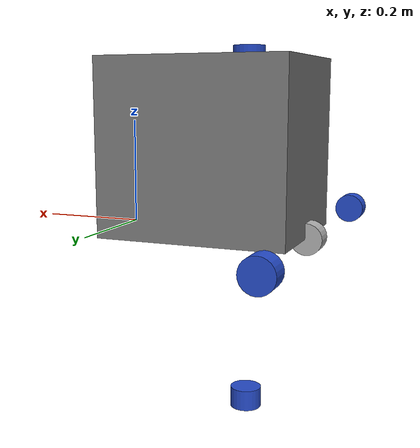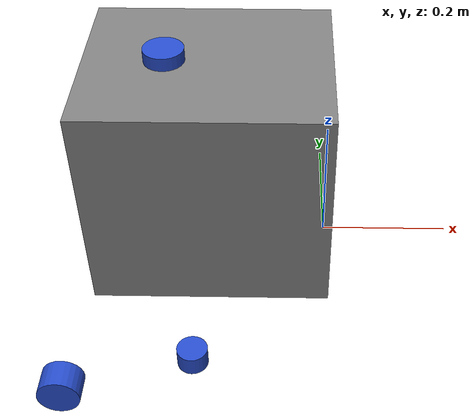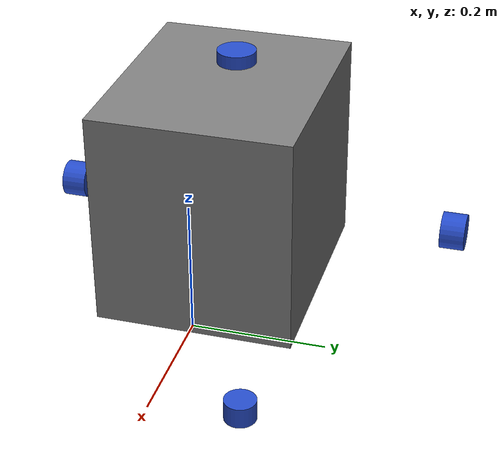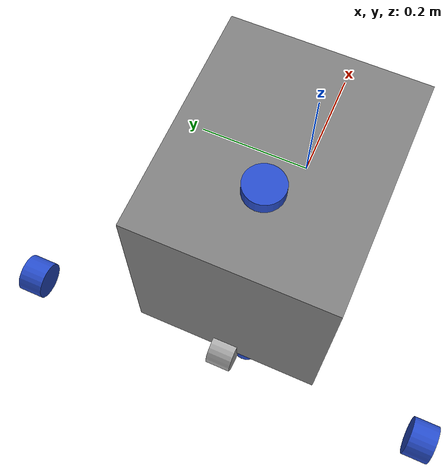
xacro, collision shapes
<?xml version="1.0"?>
<robot xmlns:xacro="http://www.ros.org/wiki/xacro"  name="robot">

    <xacro:include filename="inertial_macros.xacro"/>

      <!-- Chassis parameters -->
      <xacro:property name="chassis_length" value="0.36"/>
      <xacro:property name="chassis_width" value="0.3"/>
      <xacro:property name="chassis_height" value="0.33"/>
      <xacro:property name="chassis_mass" value="1.0"/>

      <!-- Wheel parameters -->

      <xacro:property name="wheel_radius" value="0.03"/>
      <xacro:property name="wheel_thickness" value="0.04"/>
      <xacro:property name="wheel_mass" value="0.05"/>

      <xacro:property name="wheel_offset_x" value="0.356"/>
      <xacro:property name="wheel_offset_y" value="0.330"/>
      <xacro:property name="wheel_offset_z" value="0.01"/>

      <xacro:property name="mesh_chassis_z" value="-0.015"/>
      <xacro:property name="PI" value="3.1415926535897931" />
      <!-- Simple Macro to calculate inertia -->

      <!--COLOR_RVIZ-->
    <material name="white">
        <color rgba="1 1 1 1" />
    </material>

    <material name="orange">
        <color rgba="1 0.3 0.1 1"/>
    </material>

    <material name="blue">
        <color rgba="0.2 0.2 1 1"/>
    </material>

    <material name="black">
        <color rgba="0 0 0 1"/>
    </material>

    <material name="red">
        <color rgba="1 0 0 1"/>
    </material>

    <material name="gray">
        <color rgba="0.5 0.5 0.5 1"/>
    </material>

     <!-- BASE LINK -->

     <link name="base_link">

     </link>

     <!-- BASE_FOOTPRINT LINK -->

     <joint name="base_footprint_joint" type="fixed">
         <parent link="base_link"/>
         <child link="base_footprint"/>
         <origin xyz="0 0 0" rpy="0 0 0"/>
     </joint>

     <link name="base_footprint">
     </link>

     <!-- CHASSIS LINK -->

    <joint name="chassis_joint" type="fixed">
        <parent link="base_link"/>
        <child link="chassis"/>
        <origin xyz="${-wheel_offset_x} 0 ${-wheel_offset_z}"/>
    </joint>

    <link name="chassis">

        <visual>
            <origin xyz="${chassis_length/2} 0 ${mesh_chassis_z}" rpy="0 0 0"/>
            <geometry>
                <mesh filename="/my_src/golf_kart/golf_kart/meshes/golf_kart.stl" scale="1 1 1"/>
            </geometry>
            <material name="gray"/>

        </visual>

        <collision>
            <origin xyz="${chassis_length/2} 0 ${chassis_height/2}"/>
            <geometry>
                <box size="${chassis_length} ${chassis_width} ${chassis_height}"/>
            </geometry>
        </collision>

        <xacro:inertial_box mass="0.5" x="0.3" y="0.3" z="0.15">
            <origin xyz="0.15 0 0.075" rpy="0 0 0"/>
        </xacro:inertial_box>

    </link>

    <gazebo reference="chassis">
        <material>Gazebo/Whitek</material>
    </gazebo>

     <!-- REAR LEFT WHEEL LINK -->

    <link name="rear_left_wheel">

        <collision>
            <geometry>
                 <cylinder radius="${wheel_radius}" length="${wheel_thickness}"/>
            </geometry>
        </collision>
        <xacro:inertial_cylinder mass="0.1" length="0.04" radius="0.05">
            <origin xyz="0 0 0" rpy="0 0 0"/>
        </xacro:inertial_cylinder>
    </link>

    <gazebo reference="rear_left_wheel">
        <material>Gazebo/Blue</material>
        <mu1 value="1.0"/>
		<mu2 value="1.0"/>
		<kp value="10000000.0" />
		<kd value="1.0" />
		<fdir1 value="1 0 0"/>
        <turnGravityOff>false</turnGravityOff>
    </gazebo>

    <!-- REAR RIGHT WHEEL LINK -->

    <link name="rear_right_wheel">

        <collision>
            <geometry>
                 <cylinder radius="${wheel_radius}" length="${wheel_thickness}"/>
            </geometry>
        </collision>

        <xacro:inertial_cylinder mass="0.1" length="0.04" radius="0.05">
            <origin xyz="0 0 0" rpy="0 0 0"/>
        </xacro:inertial_cylinder>

    </link>

    <gazebo reference="rear_right_wheel">
        <material>Gazebo/Blue</material>
        <mu1 value="1.0"/>
		<mu2 value="1.0"/>
		<kp value="10000000.0" />
		<kd value="1.0" />
		<fdir1 value="1 0 0"/>
        <turnGravityOff>false</turnGravityOff>
    </gazebo>

 <!-- FRONT LEFT WHEEL LINK -->

 <joint name="front_left_wheel_joint" type="continuous">
    <parent link="base_link"/>
    <child link="front_left_wheel"/>
    <origin xyz="${-(wheel_offset_x+wheel_radius/2)} ${wheel_offset_y} 0" rpy="-${pi/2} 0 0" />
    <axis xyz="0 0 1"/>
</joint>

<link name="front_left_wheel">

    <collision>
        <geometry>
             <cylinder radius="${wheel_radius}" length="${wheel_thickness}"/>
        </geometry>
    </collision>

    <xacro:inertial_cylinder mass="0.1" length="0.04" radius="0.05">
            <origin xyz="0 0 0" rpy="0 0 0"/>
        </xacro:inertial_cylinder>

</link>

<gazebo reference="front_left_wheel">
    <material>Gazebo/Blue</material>
    <mu1 value="1.0"/>
		<mu2 value="1.0"/>
		<kp value="10000000.0" />
		<kd value="1.0" />
		<fdir1 value="1 0 0"/>
        <turnGravityOff>false</turnGravityOff>
</gazebo>

<!-- FRONT RIGHT WHEEL LINK -->

<joint name="front_right_wheel_joint" type="continuous">
    <parent link="base_link"/>
    <child link="front_right_wheel"/>
    <origin xyz="${-(wheel_offset_x+wheel_radius/2)} ${-wheel_offset_y} 0" rpy="${pi/2} 0 0" />
    <axis xyz="0 0 -1"/>
</joint>

<link name="front_right_wheel">

    <collision>
        <geometry>
             <cylinder radius="${wheel_radius}" length="${wheel_thickness}"/>
        </geometry>
    </collision>

    <xacro:inertial_cylinder mass="0.1" length="0.04" radius="0.05">
        <origin xyz="0 0 0" rpy="0 0 0"/>
    </xacro:inertial_cylinder>

</link>

<gazebo reference="front_right_wheel">
    <material>Gazebo/Blue</material>
    <mu1 value="1.0"/>
		<mu2 value="1.0"/>
		<kp value="10000000.0" />
		<kd value="1.0" />
		<fdir1 value="1 0 0"/>
        <turnGravityOff>false</turnGravityOff>
</gazebo>

            <!-- STEERING -->

<link name="steering_wheel">
    <collision>
        <geometry>
             <cylinder radius="${wheel_radius}" length="${wheel_thickness}"/>
        </geometry>
    </collision>

    <xacro:inertial_cylinder mass="0.1" length="0.04" radius="0.05">
        <origin xyz="0 0 0" rpy="0 0 0"/>
    </xacro:inertial_cylinder>

</link>

<joint name="steering_joint" type="revolute">
    <parent link="chassis"/>
    <child link="steering_wheel"/>
    <origin xyz="-0.002 0 0" rpy="${pi/2} 0 0" />
    <axis xyz="0 0.964095 0.265556"/>
    <limit lower="-7.85" upper="7.85" effort="10" velocity="1"/>
</joint>

<!-- REAR AXLE -->

<link name="rear_axle">
    <collision>
        <geometry>
             <cylinder radius="${wheel_radius}" length="${wheel_thickness}"/>
        </geometry>
    </collision>

    <xacro:inertial_cylinder mass="0.1" length="0.04" radius="0.05">
        <origin xyz="0 0 0" rpy="0 0 0"/>
    </xacro:inertial_cylinder>

</link>

<joint name="rear_axle_joint" type="revolute">
    <parent link="chassis"/>
    <child link="rear_axle"/>
    <origin xyz="-0.002 0 0" rpy="${pi/2} 0 0" />
    <axis xyz="0 0.964095 0.265556"/>
    <limit lower="-7.85" upper="7.85" effort="10" velocity="1"/>
</joint>

<joint name="rear_left_wheel_joint" type="continuous">
    <parent link="rear_axle"/>
    <child link="rear_left_wheel"/>
    <origin xyz="${chassis_length/4 + wheel_radius} ${wheel_offset_y} 0" rpy="-${pi/2} 0 0" />
    <axis xyz="0 0 1"/>
</joint>

<joint name="rear_right_wheel_joint" type="continuous">
    <parent link="rear_axle"/>
    <child link="rear_right_wheel"/>
    <origin xyz="${chassis_length/4 + wheel_radius} ${-wheel_offset_y} 0" rpy="${pi/2} 0 0" />
    <axis xyz="0 0 -1"/>
</joint>

</robot>
